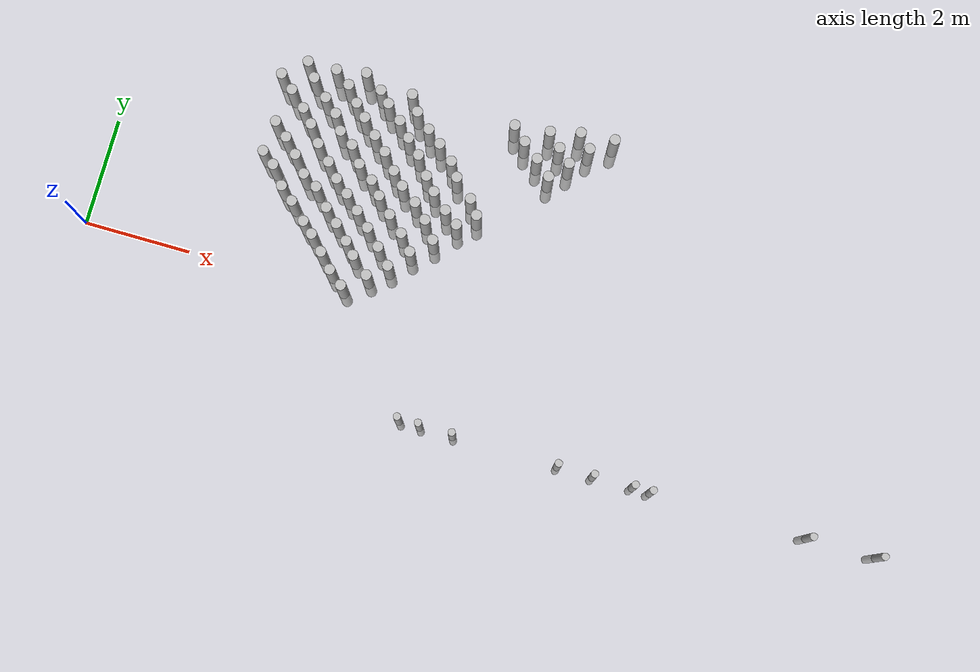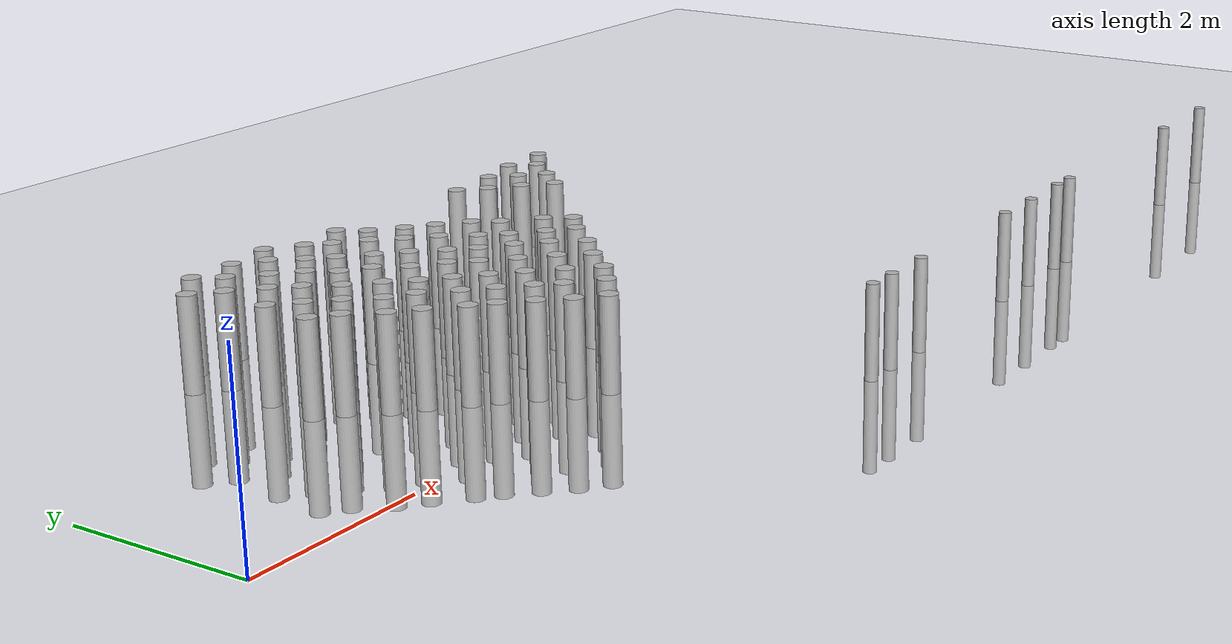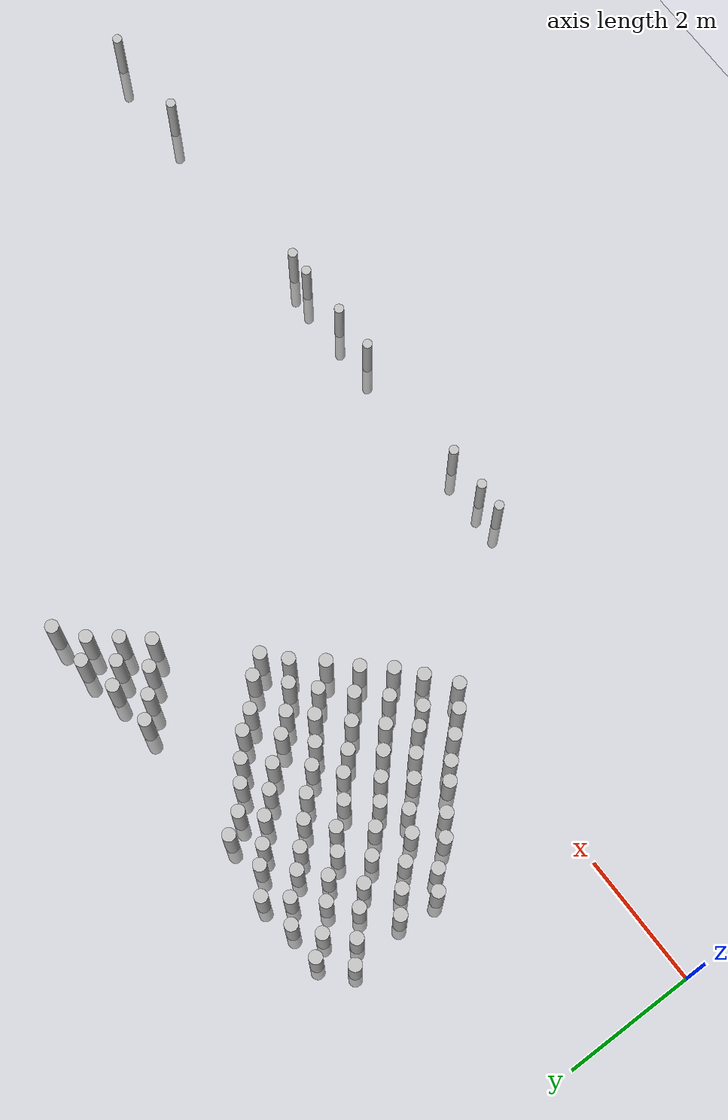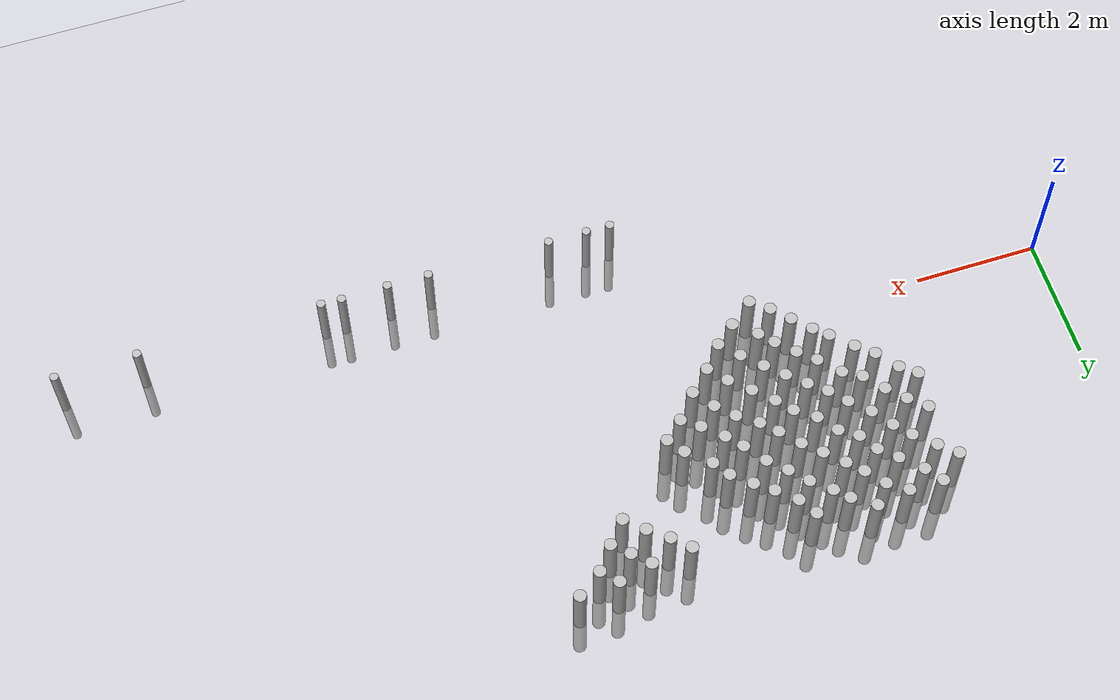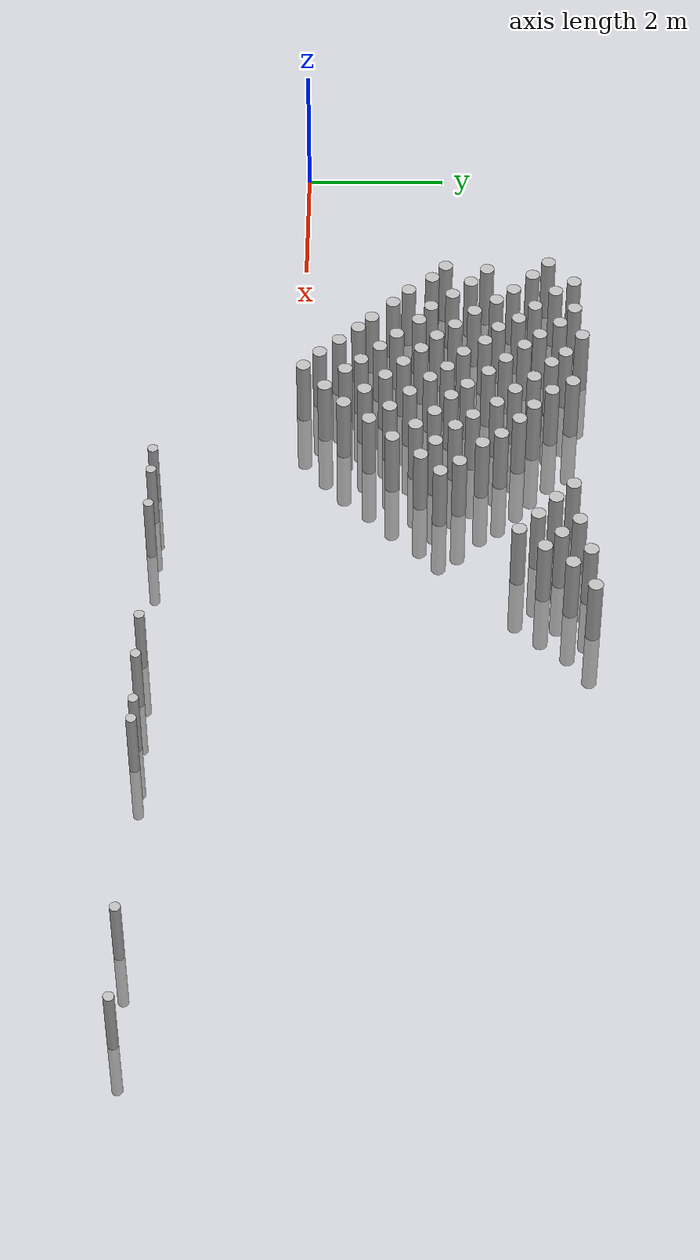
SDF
<sdf version="1.7">
 <world name="farmland_world">
  <model name="ground_plane">
   <static>1</static>
   <link name="link">
    <collision name="collision">
     <geometry><plane><normal>0 0 1</normal><size>40.0 40.0</size></plane></geometry>
     <surface><friction><ode><mu>100</mu><mu2>50</mu2></ode></friction></surface>
    </collision>
    <visual name="visual">
     <cast_shadows>0</cast_shadows>
     <geometry><plane><normal>0 0 1</normal><size>40.0 40.0</size></plane></geometry>
     <material>
      <script><uri>file://media/materials/scripts/gazebo.material</uri><name>Gazebo/Grey</name></script>
     </material>
    </visual>
   </link>
  </model>
  <model name="tree_2_0">
   <static>1</static>
   <link name="link">
    <collision name="collision">
     <geometry><cylinder><radius>0.1</radius><length>2.0</length></cylinder></geometry>
     <surface><friction><ode><mu>100</mu><mu2>50</mu2></ode></friction></surface>
    </collision>
    <visual name="visual">
     <geometry><cylinder><radius>0.1</radius><length>2.0</length></cylinder></geometry>
    </visual>
   </link>
   <pose>4.976957847610511 0.04888862747025713 0 0 0 0</pose>
  </model>
  <model name="tree_2_1">
   <static>1</static>
   <link name="link">
    <collision name="collision">
     <geometry><cylinder><radius>0.1</radius><length>2.0</length></cylinder></geometry>
     <surface><friction><ode><mu>100</mu><mu2>50</mu2></ode></friction></surface>
    </collision>
    <visual name="visual">
     <geometry><cylinder><radius>0.1</radius><length>2.0</length></cylinder></geometry>
    </visual>
   </link>
   <pose>4.706252705174817 0.2683354104112432 0 0 0 0</pose>
  </model>
  <model name="tree_2_2">
   <static>1</static>
   <link name="link">
    <collision name="collision">
     <geometry><cylinder><radius>0.1</radius><length>2.0</length></cylinder></geometry>
     <surface><friction><ode><mu>100</mu><mu2>50</mu2></ode></friction></surface>
    </collision>
    <visual name="visual">
     <geometry><cylinder><radius>0.1</radius><length>2.0</length></cylinder></geometry>
    </visual>
   </link>
   <pose>4.45766262006263 0.536296449148718 0 0 0 0</pose>
  </model>
  <model name="tree_2_3">
   <static>1</static>
   <link name="link">
    <collision name="collision">
     <geometry><cylinder><radius>0.1</radius><length>2.0</length></cylinder></geometry>
     <surface><friction><ode><mu>100</mu><mu2>50</mu2></ode></friction></surface>
    </collision>
    <visual name="visual">
     <geometry><cylinder><radius>0.1</radius><length>2.0</length></cylinder></geometry>
    </visual>
   </link>
   <pose>4.201781276606337 0.8032155601439471 0 0 0 0</pose>
  </model>
  <model name="tree_2_4">
   <static>1</static>
   <link name="link">
    <collision name="collision">
     <geometry><cylinder><radius>0.1</radius><length>2.0</length></cylinder></geometry>
     <surface><friction><ode><mu>100</mu><mu2>50</mu2></ode></friction></surface>
    </collision>
    <visual name="visual">
     <geometry><cylinder><radius>0.1</radius><length>2.0</length></cylinder></geometry>
    </visual>
   </link>
   <pose>3.992708370073716 0.9891476226442468 0 0 0 0</pose>
  </model>
  <model name="tree_2_5">
   <static>1</static>
   <link name="link">
    <collision name="collision">
     <geometry><cylinder><radius>0.1</radius><length>2.0</length></cylinder></geometry>
     <surface><friction><ode><mu>100</mu><mu2>50</mu2></ode></friction></surface>
    </collision>
    <visual name="visual">
     <geometry><cylinder><radius>0.1</radius><length>2.0</length></cylinder></geometry>
    </visual>
   </link>
   <pose>3.684042560008494 1.2877914144100004 0 0 0 0</pose>
  </model>
  <model name="tree_2_6">
   <static>1</static>
   <link name="link">
    <collision name="collision">
     <geometry><cylinder><radius>0.1</radius><length>2.0</length></cylinder></geometry>
     <surface><friction><ode><mu>100</mu><mu2>50</mu2></ode></friction></surface>
    </collision>
    <visual name="visual">
     <geometry><cylinder><radius>0.1</radius><length>2.0</length></cylinder></geometry>
    </visual>
   </link>
   <pose>3.425048770062805 1.5071883874941905 0 0 0 0</pose>
  </model>
  <model name="tree_2_7">
   <static>1</static>
   <link name="link">
    <collision name="collision">
     <geometry><cylinder><radius>0.1</radius><length>2.0</length></cylinder></geometry>
     <surface><friction><ode><mu>100</mu><mu2>50</mu2></ode></friction></surface>
    </collision>
    <visual name="visual">
     <geometry><cylinder><radius>0.1</radius><length>2.0</length></cylinder></geometry>
    </visual>
   </link>
   <pose>3.161737783501504 1.8413934828017933 0 0 0 0</pose>
  </model>
  <model name="tree_2_8">
   <static>1</static>
   <link name="link">
    <collision name="collision">
     <geometry><cylinder><radius>0.1</radius><length>2.0</length></cylinder></geometry>
     <surface><friction><ode><mu>100</mu><mu2>50</mu2></ode></friction></surface>
    </collision>
    <visual name="visual">
     <geometry><cylinder><radius>0.1</radius><length>2.0</length></cylinder></geometry>
    </visual>
   </link>
   <pose>2.917203898128225 2.033131867534686 0 0 0 0</pose>
  </model>
  <model name="tree_2_40">
   <static>1</static>
   <link name="link">
    <collision name="collision">
     <geometry><cylinder><radius>0.1</radius><length>2.0</length></cylinder></geometry>
     <surface><friction><ode><mu>100</mu><mu2>50</mu2></ode></friction></surface>
    </collision>
    <visual name="visual">
     <geometry><cylinder><radius>0.1</radius><length>2.0</length></cylinder></geometry>
    </visual>
   </link>
   <pose>6.0010371420073145 0.977404840367379 0 0 0 0</pose>
  </model>
  <model name="tree_2_41">
   <static>1</static>
   <link name="link">
    <collision name="collision">
     <geometry><cylinder><radius>0.1</radius><length>2.0</length></cylinder></geometry>
     <surface><friction><ode><mu>100</mu><mu2>50</mu2></ode></friction></surface>
    </collision>
    <visual name="visual">
     <geometry><cylinder><radius>0.1</radius><length>2.0</length></cylinder></geometry>
    </visual>
   </link>
   <pose>5.759668066585267 1.260205259457394 0 0 0 0</pose>
  </model>
  <model name="tree_2_42">
   <static>1</static>
   <link name="link">
    <collision name="collision">
     <geometry><cylinder><radius>0.1</radius><length>2.0</length></cylinder></geometry>
     <surface><friction><ode><mu>100</mu><mu2>50</mu2></ode></friction></surface>
    </collision>
    <visual name="visual">
     <geometry><cylinder><radius>0.1</radius><length>2.0</length></cylinder></geometry>
    </visual>
   </link>
   <pose>5.4624231730008415 1.5338409537364956 0 0 0 0</pose>
  </model>
  <model name="tree_2_43">
   <static>1</static>
   <link name="link">
    <collision name="collision">
     <geometry><cylinder><radius>0.1</radius><length>2.0</length></cylinder></geometry>
     <surface><friction><ode><mu>100</mu><mu2>50</mu2></ode></friction></surface>
    </collision>
    <visual name="visual">
     <geometry><cylinder><radius>0.1</radius><length>2.0</length></cylinder></geometry>
    </visual>
   </link>
   <pose>5.180801075946827 1.8142695809041989 0 0 0 0</pose>
  </model>
  <model name="tree_2_44">
   <static>1</static>
   <link name="link">
    <collision name="collision">
     <geometry><cylinder><radius>0.1</radius><length>2.0</length></cylinder></geometry>
     <surface><friction><ode><mu>100</mu><mu2>50</mu2></ode></friction></surface>
    </collision>
    <visual name="visual">
     <geometry><cylinder><radius>0.1</radius><length>2.0</length></cylinder></geometry>
    </visual>
   </link>
   <pose>4.969832545678254 2.054881575887941 0 0 0 0</pose>
  </model>
  <model name="tree_2_45">
   <static>1</static>
   <link name="link">
    <collision name="collision">
     <geometry><cylinder><radius>0.1</radius><length>2.0</length></cylinder></geometry>
     <surface><friction><ode><mu>100</mu><mu2>50</mu2></ode></friction></surface>
    </collision>
    <visual name="visual">
     <geometry><cylinder><radius>0.1</radius><length>2.0</length></cylinder></geometry>
    </visual>
   </link>
   <pose>4.668280814609631 2.280684973493861 0 0 0 0</pose>
  </model>
  <model name="tree_2_46">
   <static>1</static>
   <link name="link">
    <collision name="collision">
     <geometry><cylinder><radius>0.1</radius><length>2.0</length></cylinder></geometry>
     <surface><friction><ode><mu>100</mu><mu2>50</mu2></ode></friction></surface>
    </collision>
    <visual name="visual">
     <geometry><cylinder><radius>0.1</radius><length>2.0</length></cylinder></geometry>
    </visual>
   </link>
   <pose>4.441148075857599 2.584593504124776 0 0 0 0</pose>
  </model>
  <model name="tree_2_47">
   <static>1</static>
   <link name="link">
    <collision name="collision">
     <geometry><cylinder><radius>0.1</radius><length>2.0</length></cylinder></geometry>
     <surface><friction><ode><mu>100</mu><mu2>50</mu2></ode></friction></surface>
    </collision>
    <visual name="visual">
     <geometry><cylinder><radius>0.1</radius><length>2.0</length></cylinder></geometry>
    </visual>
   </link>
   <pose>4.167269508011154 2.774924114397641 0 0 0 0</pose>
  </model>
  <model name="tree_2_48">
   <static>1</static>
   <link name="link">
    <collision name="collision">
     <geometry><cylinder><radius>0.1</radius><length>2.0</length></cylinder></geometry>
     <surface><friction><ode><mu>100</mu><mu2>50</mu2></ode></friction></surface>
    </collision>
    <visual name="visual">
     <geometry><cylinder><radius>0.1</radius><length>2.0</length></cylinder></geometry>
    </visual>
   </link>
   <pose>3.987979063594125 3.0650073372662496 0 0 0 0</pose>
  </model>
  <model name="tree_2_49">
   <static>1</static>
   <link name="link">
    <collision name="collision">
     <geometry><cylinder><radius>0.1</radius><length>2.0</length></cylinder></geometry>
     <surface><friction><ode><mu>100</mu><mu2>50</mu2></ode></friction></surface>
    </collision>
    <visual name="visual">
     <geometry><cylinder><radius>0.1</radius><length>2.0</length></cylinder></geometry>
    </visual>
   </link>
   <pose>3.7270629796933323 3.30045049244821 0 0 0 0</pose>
  </model>
  <model name="tree_2_50">
   <static>1</static>
   <link name="link">
    <collision name="collision">
     <geometry><cylinder><radius>0.1</radius><length>2.0</length></cylinder></geometry>
     <surface><friction><ode><mu>100</mu><mu2>50</mu2></ode></friction></surface>
    </collision>
    <visual name="visual">
     <geometry><cylinder><radius>0.1</radius><length>2.0</length></cylinder></geometry>
    </visual>
   </link>
   <pose>3.422714844576982 3.5980953001499714 0 0 0 0</pose>
  </model>
  <model name="tree_2_51">
   <static>1</static>
   <link name="link">
    <collision name="collision">
     <geometry><cylinder><radius>0.1</radius><length>2.0</length></cylinder></geometry>
     <surface><friction><ode><mu>100</mu><mu2>50</mu2></ode></friction></surface>
    </collision>
    <visual name="visual">
     <geometry><cylinder><radius>0.1</radius><length>2.0</length></cylinder></geometry>
    </visual>
   </link>
   <pose>3.2252628674387864 3.862664644285818 0 0 0 0</pose>
  </model>
  <model name="tree_2_80">
   <static>1</static>
   <link name="link">
    <collision name="collision">
     <geometry><cylinder><radius>0.1</radius><length>2.0</length></cylinder></geometry>
     <surface><friction><ode><mu>100</mu><mu2>50</mu2></ode></friction></surface>
    </collision>
    <visual name="visual">
     <geometry><cylinder><radius>0.1</radius><length>2.0</length></cylinder></geometry>
    </visual>
   </link>
   <pose>6.981008193168833 1.9548397121815542 0 0 0 0</pose>
  </model>
  <model name="tree_2_81">
   <static>1</static>
   <link name="link">
    <collision name="collision">
     <geometry><cylinder><radius>0.1</radius><length>2.0</length></cylinder></geometry>
     <surface><friction><ode><mu>100</mu><mu2>50</mu2></ode></friction></surface>
    </collision>
    <visual name="visual">
     <geometry><cylinder><radius>0.1</radius><length>2.0</length></cylinder></geometry>
    </visual>
   </link>
   <pose>6.79246455439446 2.2184769236799253 0 0 0 0</pose>
  </model>
  <model name="tree_2_82">
   <static>1</static>
   <link name="link">
    <collision name="collision">
     <geometry><cylinder><radius>0.1</radius><length>2.0</length></cylinder></geometry>
     <surface><friction><ode><mu>100</mu><mu2>50</mu2></ode></friction></surface>
    </collision>
    <visual name="visual">
     <geometry><cylinder><radius>0.1</radius><length>2.0</length></cylinder></geometry>
    </visual>
   </link>
   <pose>6.443024446925515 2.531347688089246 0 0 0 0</pose>
  </model>
  <model name="tree_2_83">
   <static>1</static>
   <link name="link">
    <collision name="collision">
     <geometry><cylinder><radius>0.1</radius><length>2.0</length></cylinder></geometry>
     <surface><friction><ode><mu>100</mu><mu2>50</mu2></ode></friction></surface>
    </collision>
    <visual name="visual">
     <geometry><cylinder><radius>0.1</radius><length>2.0</length></cylinder></geometry>
    </visual>
   </link>
   <pose>6.2645026730651034 2.7909225865567393 0 0 0 0</pose>
  </model>
  <model name="tree_2_84">
   <static>1</static>
   <link name="link">
    <collision name="collision">
     <geometry><cylinder><radius>0.1</radius><length>2.0</length></cylinder></geometry>
     <surface><friction><ode><mu>100</mu><mu2>50</mu2></ode></friction></surface>
    </collision>
    <visual name="visual">
     <geometry><cylinder><radius>0.1</radius><length>2.0</length></cylinder></geometry>
    </visual>
   </link>
   <pose>5.973271860298199 3.043626457601918 0 0 0 0</pose>
  </model>
  <model name="tree_2_85">
   <static>1</static>
   <link name="link">
    <collision name="collision">
     <geometry><cylinder><radius>0.1</radius><length>2.0</length></cylinder></geometry>
     <surface><friction><ode><mu>100</mu><mu2>50</mu2></ode></friction></surface>
    </collision>
    <visual name="visual">
     <geometry><cylinder><radius>0.1</radius><length>2.0</length></cylinder></geometry>
    </visual>
   </link>
   <pose>5.705454714765799 3.248689479239055 0 0 0 0</pose>
  </model>
  <model name="tree_2_86">
   <static>1</static>
   <link name="link">
    <collision name="collision">
     <geometry><cylinder><radius>0.1</radius><length>2.0</length></cylinder></geometry>
     <surface><friction><ode><mu>100</mu><mu2>50</mu2></ode></friction></surface>
    </collision>
    <visual name="visual">
     <geometry><cylinder><radius>0.1</radius><length>2.0</length></cylinder></geometry>
    </visual>
   </link>
   <pose>5.414862065006653 3.505072572647418 0 0 0 0</pose>
  </model>
  <model name="tree_2_87">
   <static>1</static>
   <link name="link">
    <collision name="collision">
     <geometry><cylinder><radius>0.1</radius><length>2.0</length></cylinder></geometry>
     <surface><friction><ode><mu>100</mu><mu2>50</mu2></ode></friction></surface>
    </collision>
    <visual name="visual">
     <geometry><cylinder><radius>0.1</radius><length>2.0</length></cylinder></geometry>
    </visual>
   </link>
   <pose>5.235408300685697 3.7935683210757527 0 0 0 0</pose>
  </model>
  <model name="tree_2_120">
   <static>1</static>
   <link name="link">
    <collision name="collision">
     <geometry><cylinder><radius>0.1</radius><length>2.0</length></cylinder></geometry>
     <surface><friction><ode><mu>100</mu><mu2>50</mu2></ode></friction></surface>
    </collision>
    <visual name="visual">
     <geometry><cylinder><radius>0.1</radius><length>2.0</length></cylinder></geometry>
    </visual>
   </link>
   <pose>8.042603543891024 3.0045819595601126 0 0 0 0</pose>
  </model>
  <model name="tree_2_121">
   <static>1</static>
   <link name="link">
    <collision name="collision">
     <geometry><cylinder><radius>0.1</radius><length>2.0</length></cylinder></geometry>
     <surface><friction><ode><mu>100</mu><mu2>50</mu2></ode></friction></surface>
    </collision>
    <visual name="visual">
     <geometry><cylinder><radius>0.1</radius><length>2.0</length></cylinder></geometry>
    </visual>
   </link>
   <pose>7.755571899967402 3.266721064825569 0 0 0 0</pose>
  </model>
  <model name="tree_2_122">
   <static>1</static>
   <link name="link">
    <collision name="collision">
     <geometry><cylinder><radius>0.1</radius><length>2.0</length></cylinder></geometry>
     <surface><friction><ode><mu>100</mu><mu2>50</mu2></ode></friction></surface>
    </collision>
    <visual name="visual">
     <geometry><cylinder><radius>0.1</radius><length>2.0</length></cylinder></geometry>
    </visual>
   </link>
   <pose>7.451276739690299 3.511164848479967 0 0 0 0</pose>
  </model>
  <model name="tree_2_123">
   <static>1</static>
   <link name="link">
    <collision name="collision">
     <geometry><cylinder><radius>0.1</radius><length>2.0</length></cylinder></geometry>
     <surface><friction><ode><mu>100</mu><mu2>50</mu2></ode></friction></surface>
    </collision>
    <visual name="visual">
     <geometry><cylinder><radius>0.1</radius><length>2.0</length></cylinder></geometry>
    </visual>
   </link>
   <pose>7.1951181243607 3.7550683675149332 0 0 0 0</pose>
  </model>
  <model name="tree_2_160">
   <static>1</static>
   <link name="link">
    <collision name="collision">
     <geometry><cylinder><radius>0.1</radius><length>2.0</length></cylinder></geometry>
     <surface><friction><ode><mu>100</mu><mu2>50</mu2></ode></friction></surface>
    </collision>
    <visual name="visual">
     <geometry><cylinder><radius>0.1</radius><length>2.0</length></cylinder></geometry>
    </visual>
   </link>
   <pose>9.025278212752312 3.991523120894988 0 0 0 0</pose>
  </model>
  <model name="tree_2_240">
   <static>1</static>
   <link name="link">
    <collision name="collision">
     <geometry><cylinder><radius>0.1</radius><length>2.0</length></cylinder></geometry>
     <surface><friction><ode><mu>100</mu><mu2>50</mu2></ode></friction></surface>
    </collision>
    <visual name="visual">
     <geometry><cylinder><radius>0.1</radius><length>2.0</length></cylinder></geometry>
    </visual>
   </link>
   <pose>5.367338214895841 0.35314282978311407 0 0 0 0</pose>
  </model>
  <model name="tree_2_241">
   <static>1</static>
   <link name="link">
    <collision name="collision">
     <geometry><cylinder><radius>0.1</radius><length>2.0</length></cylinder></geometry>
     <surface><friction><ode><mu>100</mu><mu2>50</mu2></ode></friction></surface>
    </collision>
    <visual name="visual">
     <geometry><cylinder><radius>0.1</radius><length>2.0</length></cylinder></geometry>
    </visual>
   </link>
   <pose>5.0362766076079035 0.6330379190573571 0 0 0 0</pose>
  </model>
  <model name="tree_2_242">
   <static>1</static>
   <link name="link">
    <collision name="collision">
     <geometry><cylinder><radius>0.1</radius><length>2.0</length></cylinder></geometry>
     <surface><friction><ode><mu>100</mu><mu2>50</mu2></ode></friction></surface>
    </collision>
    <visual name="visual">
     <geometry><cylinder><radius>0.1</radius><length>2.0</length></cylinder></geometry>
    </visual>
   </link>
   <pose>4.843643334480206 0.850210613098685 0 0 0 0</pose>
  </model>
  <model name="tree_2_243">
   <static>1</static>
   <link name="link">
    <collision name="collision">
     <geometry><cylinder><radius>0.1</radius><length>2.0</length></cylinder></geometry>
     <surface><friction><ode><mu>100</mu><mu2>50</mu2></ode></friction></surface>
    </collision>
    <visual name="visual">
     <geometry><cylinder><radius>0.1</radius><length>2.0</length></cylinder></geometry>
    </visual>
   </link>
   <pose>4.578727545219148 1.1115196856023477 0 0 0 0</pose>
  </model>
  <model name="tree_2_244">
   <static>1</static>
   <link name="link">
    <collision name="collision">
     <geometry><cylinder><radius>0.1</radius><length>2.0</length></cylinder></geometry>
     <surface><friction><ode><mu>100</mu><mu2>50</mu2></ode></friction></surface>
    </collision>
    <visual name="visual">
     <geometry><cylinder><radius>0.1</radius><length>2.0</length></cylinder></geometry>
    </visual>
   </link>
   <pose>4.321195215670547 1.3454823482344576 0 0 0 0</pose>
  </model>
  <model name="tree_2_245">
   <static>1</static>
   <link name="link">
    <collision name="collision">
     <geometry><cylinder><radius>0.1</radius><length>2.0</length></cylinder></geometry>
     <surface><friction><ode><mu>100</mu><mu2>50</mu2></ode></friction></surface>
    </collision>
    <visual name="visual">
     <geometry><cylinder><radius>0.1</radius><length>2.0</length></cylinder></geometry>
    </visual>
   </link>
   <pose>4.032100634037781 1.6587347103401542 0 0 0 0</pose>
  </model>
  <model name="tree_2_246">
   <static>1</static>
   <link name="link">
    <collision name="collision">
     <geometry><cylinder><radius>0.1</radius><length>2.0</length></cylinder></geometry>
     <surface><friction><ode><mu>100</mu><mu2>50</mu2></ode></friction></surface>
    </collision>
    <visual name="visual">
     <geometry><cylinder><radius>0.1</radius><length>2.0</length></cylinder></geometry>
    </visual>
   </link>
   <pose>3.7517705935666434 1.8280204498524988 0 0 0 0</pose>
  </model>
  <model name="tree_2_247">
   <static>1</static>
   <link name="link">
    <collision name="collision">
     <geometry><cylinder><radius>0.1</radius><length>2.0</length></cylinder></geometry>
     <surface><friction><ode><mu>100</mu><mu2>50</mu2></ode></friction></surface>
    </collision>
    <visual name="visual">
     <geometry><cylinder><radius>0.1</radius><length>2.0</length></cylinder></geometry>
    </visual>
   </link>
   <pose>3.4999158954587792 2.1312260990390466 0 0 0 0</pose>
  </model>
  <model name="tree_2_248">
   <static>1</static>
   <link name="link">
    <collision name="collision">
     <geometry><cylinder><radius>0.1</radius><length>2.0</length></cylinder></geometry>
     <surface><friction><ode><mu>100</mu><mu2>50</mu2></ode></friction></surface>
    </collision>
    <visual name="visual">
     <geometry><cylinder><radius>0.1</radius><length>2.0</length></cylinder></geometry>
    </visual>
   </link>
   <pose>3.2443464452610624 2.394700390191073 0 0 0 0</pose>
  </model>
  <model name="tree_2_249">
   <static>1</static>
   <link name="link">
    <collision name="collision">
     <geometry><cylinder><radius>0.1</radius><length>2.0</length></cylinder></geometry>
     <surface><friction><ode><mu>100</mu><mu2>50</mu2></ode></friction></surface>
    </collision>
    <visual name="visual">
     <geometry><cylinder><radius>0.1</radius><length>2.0</length></cylinder></geometry>
    </visual>
   </link>
   <pose>2.9779838986433536 2.625640966618325 0 0 0 0</pose>
  </model>
  <model name="tree_2_280">
   <static>1</static>
   <link name="link">
    <collision name="collision">
     <geometry><cylinder><radius>0.1</radius><length>2.0</length></cylinder></geometry>
     <surface><friction><ode><mu>100</mu><mu2>50</mu2></ode></friction></surface>
    </collision>
    <visual name="visual">
     <geometry><cylinder><radius>0.1</radius><length>2.0</length></cylinder></geometry>
    </visual>
   </link>
   <pose>5.691227592226115 0.6230135812925114 0 0 0 0</pose>
  </model>
  <model name="tree_2_281">
   <static>1</static>
   <link name="link">
    <collision name="collision">
     <geometry><cylinder><radius>0.1</radius><length>2.0</length></cylinder></geometry>
     <surface><friction><ode><mu>100</mu><mu2>50</mu2></ode></friction></surface>
    </collision>
    <visual name="visual">
     <geometry><cylinder><radius>0.1</radius><length>2.0</length></cylinder></geometry>
    </visual>
   </link>
   <pose>5.426146736078497 0.9076431892787518 0 0 0 0</pose>
  </model>
  <model name="tree_2_282">
   <static>1</static>
   <link name="link">
    <collision name="collision">
     <geometry><cylinder><radius>0.1</radius><length>2.0</length></cylinder></geometry>
     <surface><friction><ode><mu>100</mu><mu2>50</mu2></ode></friction></surface>
    </collision>
    <visual name="visual">
     <geometry><cylinder><radius>0.1</radius><length>2.0</length></cylinder></geometry>
    </visual>
   </link>
   <pose>5.1446276067553525 1.19199477218192 0 0 0 0</pose>
  </model>
  <model name="tree_2_283">
   <static>1</static>
   <link name="link">
    <collision name="collision">
     <geometry><cylinder><radius>0.1</radius><length>2.0</length></cylinder></geometry>
     <surface><friction><ode><mu>100</mu><mu2>50</mu2></ode></friction></surface>
    </collision>
    <visual name="visual">
     <geometry><cylinder><radius>0.1</radius><length>2.0</length></cylinder></geometry>
    </visual>
   </link>
   <pose>4.876733584895892 1.4416135953677043 0 0 0 0</pose>
  </model>
  <model name="tree_2_284">
   <static>1</static>
   <link name="link">
    <collision name="collision">
     <geometry><cylinder><radius>0.1</radius><length>2.0</length></cylinder></geometry>
     <surface><friction><ode><mu>100</mu><mu2>50</mu2></ode></friction></surface>
    </collision>
    <visual name="visual">
     <geometry><cylinder><radius>0.1</radius><length>2.0</length></cylinder></geometry>
    </visual>
   </link>
   <pose>4.6106415581796405 1.6884684564396952 0 0 0 0</pose>
  </model>
  <model name="tree_2_285">
   <static>1</static>
   <link name="link">
    <collision name="collision">
     <geometry><cylinder><radius>0.1</radius><length>2.0</length></cylinder></geometry>
     <surface><friction><ode><mu>100</mu><mu2>50</mu2></ode></friction></surface>
    </collision>
    <visual name="visual">
     <geometry><cylinder><radius>0.1</radius><length>2.0</length></cylinder></geometry>
    </visual>
   </link>
   <pose>4.351264524582648 1.9062797715256483 0 0 0 0</pose>
  </model>
  <model name="tree_2_286">
   <static>1</static>
   <link name="link">
    <collision name="collision">
     <geometry><cylinder><radius>0.1</radius><length>2.0</length></cylinder></geometry>
     <surface><friction><ode><mu>100</mu><mu2>50</mu2></ode></friction></surface>
    </collision>
    <visual name="visual">
     <geometry><cylinder><radius>0.1</radius><length>2.0</length></cylinder></geometry>
    </visual>
   </link>
   <pose>4.120650008757715 2.1651808575136795 0 0 0 0</pose>
  </model>
  <model name="tree_2_287">
   <static>1</static>
   <link name="link">
    <collision name="collision">
     <geometry><cylinder><radius>0.1</radius><length>2.0</length></cylinder></geometry>
     <surface><friction><ode><mu>100</mu><mu2>50</mu2></ode></friction></surface>
    </collision>
    <visual name="visual">
     <geometry><cylinder><radius>0.1</radius><length>2.0</length></cylinder></geometry>
    </visual>
   </link>
   <pose>3.841000941679936 2.4400202391214223 0 0 0 0</pose>
  </model>
  <model name="tree_2_288">
   <static>1</static>
   <link name="link">
    <collision name="collision">
     <geometry><cylinder><radius>0.1</radius><length>2.0</length></cylinder></geometry>
     <surface><friction><ode><mu>100</mu><mu2>50</mu2></ode></friction></surface>
    </collision>
    <visual name="visual">
     <geometry><cylinder><radius>0.1</radius><length>2.0</length></cylinder></geometry>
    </visual>
   </link>
   <pose>3.611004645325913 2.753388063750779 0 0 0 0</pose>
  </model>
  <model name="tree_2_289">
   <static>1</static>
   <link name="link">
    <collision name="collision">
     <geometry><cylinder><radius>0.1</radius><length>2.0</length></cylinder></geometry>
     <surface><friction><ode><mu>100</mu><mu2>50</mu2></ode></friction></surface>
    </collision>
    <visual name="visual">
     <geometry><cylinder><radius>0.1</radius><length>2.0</length></cylinder></geometry>
    </visual>
   </link>
   <pose>3.3924424965572784 2.999596456813495 0 0 0 0</pose>
  </model>
  <model name="tree_2_290">
   <static>1</static>
   <link name="link">
    <collision name="collision">
     <geometry><cylinder><radius>0.1</radius><length>2.0</length></cylinder></geometry>
     <surface><friction><ode><mu>100</mu><mu2>50</mu2></ode></friction></surface>
    </collision>
    <visual name="visual">
     <geometry><cylinder><radius>0.1</radius><length>2.0</length></cylinder></geometry>
    </visual>
   </link>
   <pose>3.0906795220554177 3.275160626412783 0 0 0 0</pose>
  </model>
  <model name="tree_2_291">
   <static>1</static>
   <link name="link">
    <collision name="collision">
     <geometry><cylinder><radius>0.1</radius><length>2.0</length></cylinder></geometry>
     <surface><friction><ode><mu>100</mu><mu2>50</mu2></ode></friction></surface>
    </collision>
    <visual name="visual">
     <geometry><cylinder><radius>0.1</radius><length>2.0</length></cylinder></geometry>
    </visual>
   </link>
   <pose>2.8248094526706815 3.5082438733390706 0 0 0 0</pose>
  </model>
  <model name="tree_2_320">
   <static>1</static>
   <link name="link">
    <collision name="collision">
     <geometry><cylinder><radius>0.1</radius><length>2.0</length></cylinder></geometry>
     <surface><friction><ode><mu>100</mu><mu2>50</mu2></ode></friction></surface>
    </collision>
    <visual name="visual">
     <geometry><cylinder><radius>0.1</radius><length>2.0</length></cylinder></geometry>
    </visual>
   </link>
   <pose>6.342244346120517 1.300651003431943 0 0 0 0</pose>
  </model>
  <model name="tree_2_321">
   <static>1</static>
   <link name="link">
    <collision name="collision">
     <geometry><cylinder><radius>0.1</radius><length>2.0</length></cylinder></geometry>
     <surface><friction><ode><mu>100</mu><mu2>50</mu2></ode></friction></surface>
    </collision>
    <visual name="visual">
     <geometry><cylinder><radius>0.1</radius><length>2.0</length></cylinder></geometry>
    </visual>
   </link>
   <pose>6.104549829214059 1.6175160248595444 0 0 0 0</pose>
  </model>
  <model name="tree_2_322">
   <static>1</static>
   <link name="link">
    <collision name="collision">
     <geometry><cylinder><radius>0.1</radius><length>2.0</length></cylinder></geometry>
     <surface><friction><ode><mu>100</mu><mu2>50</mu2></ode></friction></surface>
    </collision>
    <visual name="visual">
     <geometry><cylinder><radius>0.1</radius><length>2.0</length></cylinder></geometry>
    </visual>
   </link>
   <pose>5.84376055962443 1.8767031042539275 0 0 0 0</pose>
  </model>
  <model name="tree_2_323">
   <static>1</static>
   <link name="link">
    <collision name="collision">
     <geometry><cylinder><radius>0.1</radius><length>2.0</length></cylinder></geometry>
     <surface><friction><ode><mu>100</mu><mu2>50</mu2></ode></friction></surface>
    </collision>
    <visual name="visual">
     <geometry><cylinder><radius>0.1</radius><length>2.0</length></cylinder></geometry>
    </visual>
   </link>
   <pose>5.536203207848737 2.10479751566718 0 0 0 0</pose>
  </model>
  <model name="tree_2_324">
   <static>1</static>
   <link name="link">
    <collision name="collision">
     <geometry><cylinder><radius>0.1</radius><length>2.0</length></cylinder></geometry>
     <surface><friction><ode><mu>100</mu><mu2>50</mu2></ode></friction></surface>
    </collision>
    <visual name="visual">
     <geometry><cylinder><radius>0.1</radius><length>2.0</length></cylinder></geometry>
    </visual>
   </link>
   <pose>5.310281185749333 2.3321306083543942 0 0 0 0</pose>
  </model>
  <model name="tree_2_325">
   <static>1</static>
   <link name="link">
    <collision name="collision">
     <geometry><cylinder><radius>0.1</radius><length>2.0</length></cylinder></geometry>
     <surface><friction><ode><mu>100</mu><mu2>50</mu2></ode></friction></surface>
    </collision>
    <visual name="visual">
     <geometry><cylinder><radius>0.1</radius><length>2.0</length></cylinder></geometry>
    </visual>
   </link>
   <pose>5.052917709842374 2.6257838121887995 0 0 0 0</pose>
  </model>
  <model name="tree_2_326">
   <static>1</static>
   <link name="link">
    <collision name="collision">
     <geometry><cylinder><radius>0.1</radius><length>2.0</length></cylinder></geometry>
     <surface><friction><ode><mu>100</mu><mu2>50</mu2></ode></friction></surface>
    </collision>
    <visual name="visual">
     <geometry><cylinder><radius>0.1</radius><length>2.0</length></cylinder></geometry>
    </visual>
   </link>
   <pose>4.791457200791862 2.8700082688558686 0 0 0 0</pose>
  </model>
  <model name="tree_2_327">
   <static>1</static>
   <link name="link">
    <collision name="collision">
     <geometry><cylinder><radius>0.1</radius><length>2.0</length></cylinder></geometry>
     <surface><friction><ode><mu>100</mu><mu2>50</mu2></ode></friction></surface>
    </collision>
    <visual name="visual">
     <geometry><cylinder><radius>0.1</radius><length>2.0</length></cylinder></geometry>
    </visual>
   </link>
   <pose>4.521813581722415 3.136496958441839 0 0 0 0</pose>
  </model>
  <model name="tree_2_328">
   <static>1</static>
   <link name="link">
    <collision name="collision">
     <geometry><cylinder><radius>0.1</radius><length>2.0</length></cylinder></geometry>
     <surface><friction><ode><mu>100</mu><mu2>50</mu2></ode></friction></surface>
    </collision>
    <visual name="visual">
     <geometry><cylinder><radius>0.1</radius><length>2.0</length></cylinder></geometry>
    </visual>
   </link>
   <pose>4.303934047635899 3.3564097450371406 0 0 0 0</pose>
  </model>
  <model name="tree_2_329">
   <static>1</static>
   <link name="link">
    <collision name="collision">
     <geometry><cylinder><radius>0.1</radius><length>2.0</length></cylinder></geometry>
     <surface><friction><ode><mu>100</mu><mu2>50</mu2></ode></friction></surface>
    </collision>
    <visual name="visual">
     <geometry><cylinder><radius>0.1</radius><length>2.0</length></cylinder></geometry>
    </visual>
   </link>
   <pose>4.066816473609134 3.6471249152297327 0 0 0 0</pose>
  </model>
  <model name="tree_2_330">
   <static>1</static>
   <link name="link">
    <collision name="collision">
     <geometry><cylinder><radius>0.1</radius><length>2.0</length></cylinder></geometry>
     <surface><friction><ode><mu>100</mu><mu2>50</mu2></ode></friction></surface>
    </collision>
    <visual name="visual">
     <geometry><cylinder><radius>0.1</radius><length>2.0</length></cylinder></geometry>
    </visual>
   </link>
   <pose>3.769432952960459 3.8575614288253335 0 0 0 0</pose>
  </model>
  <model name="tree_2_360">
   <static>1</static>
   <link name="link">
    <collision name="collision">
     <geometry><cylinder><radius>0.1</radius><length>2.0</length></cylinder></geometry>
     <surface><friction><ode><mu>100</mu><mu2>50</mu2></ode></friction></surface>
    </collision>
    <visual name="visual">
     <geometry><cylinder><radius>0.1</radius><length>2.0</length></cylinder></geometry>
    </visual>
   </link>
   <pose>6.676639426620687 1.689458375534782 0 0 0 0</pose>
  </model>
  <model name="tree_2_361">
   <static>1</static>
   <link name="link">
    <collision name="collision">
     <geometry><cylinder><radius>0.1</radius><length>2.0</length></cylinder></geometry>
     <surface><friction><ode><mu>100</mu><mu2>50</mu2></ode></friction></surface>
    </collision>
    <visual name="visual">
     <geometry><cylinder><radius>0.1</radius><length>2.0</length></cylinder></geometry>
    </visual>
   </link>
   <pose>6.4117410658012695 1.8909860870417834 0 0 0 0</pose>
  </model>
  <model name="tree_2_362">
   <static>1</static>
   <link name="link">
    <collision name="collision">
     <geometry><cylinder><radius>0.1</radius><length>2.0</length></cylinder></geometry>
     <surface><friction><ode><mu>100</mu><mu2>50</mu2></ode></friction></surface>
    </collision>
    <visual name="visual">
     <geometry><cylinder><radius>0.1</radius><length>2.0</length></cylinder></geometry>
    </visual>
   </link>
   <pose>6.117065655519479 2.161720694899487 0 0 0 0</pose>
  </model>
  <model name="tree_2_363">
   <static>1</static>
   <link name="link">
    <collision name="collision">
     <geometry><cylinder><radius>0.1</radius><length>2.0</length></cylinder></geometry>
     <surface><friction><ode><mu>100</mu><mu2>50</mu2></ode></friction></surface>
    </collision>
    <visual name="visual">
     <geometry><cylinder><radius>0.1</radius><length>2.0</length></cylinder></geometry>
    </visual>
   </link>
   <pose>5.904058391546656 2.404207016664008 0 0 0 0</pose>
  </model>
  <model name="tree_2_364">
   <static>1</static>
   <link name="link">
    <collision name="collision">
     <geometry><cylinder><radius>0.1</radius><length>2.0</length></cylinder></geometry>
     <surface><friction><ode><mu>100</mu><mu2>50</mu2></ode></friction></surface>
    </collision>
    <visual name="visual">
     <geometry><cylinder><radius>0.1</radius><length>2.0</length></cylinder></geometry>
    </visual>
   </link>
   <pose>5.658852172155477 2.736774761728095 0 0 0 0</pose>
  </model>
  <model name="tree_2_365">
   <static>1</static>
   <link name="link">
    <collision name="collision">
     <geometry><cylinder><radius>0.1</radius><length>2.0</length></cylinder></geometry>
     <surface><friction><ode><mu>100</mu><mu2>50</mu2></ode></friction></surface>
    </collision>
    <visual name="visual">
     <geometry><cylinder><radius>0.1</radius><length>2.0</length></cylinder></geometry>
    </visual>
   </link>
   <pose>5.397272689053942 2.990930292529275 0 0 0 0</pose>
  </model>
  <model name="tree_2_366">
   <static>1</static>
   <link name="link">
    <collision name="collision">
     <geometry><cylinder><radius>0.1</radius><length>2.0</length></cylinder></geometry>
     <surface><friction><ode><mu>100</mu><mu2>50</mu2></ode></friction></surface>
    </collision>
    <visual name="visual">
     <geometry><cylinder><radius>0.1</radius><length>2.0</length></cylinder></geometry>
    </visual>
   </link>
   <pose>5.1525433808977 3.2584055393377804 0 0 0 0</pose>
  </model>
  <model name="tree_2_367">
   <static>1</static>
   <link name="link">
    <collision name="collision">
     <geometry><cylinder><radius>0.1</radius><length>2.0</length></cylinder></geometry>
     <surface><friction><ode><mu>100</mu><mu2>50</mu2></ode></friction></surface>
    </collision>
    <visual name="visual">
     <geometry><cylinder><radius>0.1</radius><length>2.0</length></cylinder></geometry>
    </visual>
   </link>
   <pose>4.863849337233464 3.5079900462866385 0 0 0 0</pose>
  </model>
  <model name="tree_2_368">
   <static>1</static>
   <link name="link">
    <collision name="collision">
     <geometry><cylinder><radius>0.1</radius><length>2.0</length></cylinder></geometry>
     <surface><friction><ode><mu>100</mu><mu2>50</mu2></ode></friction></surface>
    </collision>
    <visual name="visual">
     <geometry><cylinder><radius>0.1</radius><length>2.0</length></cylinder></geometry>
    </visual>
   </link>
   <pose>4.661347765914045 3.7095551999365797 0 0 0 0</pose>
  </model>
  <model name="tree_2_369">
   <static>1</static>
   <link name="link">
    <collision name="collision">
     <geometry><cylinder><radius>0.1</radius><length>2.0</length></cylinder></geometry>
     <surface><friction><ode><mu>100</mu><mu2>50</mu2></ode></friction></surface>
    </collision>
    <visual name="visual">
     <geometry><cylinder><radius>0.1</radius><length>2.0</length></cylinder></geometry>
    </visual>
   </link>
   <pose>4.3158433648449765 3.949170971304256 0 0 0 0</pose>
  </model>
  <model name="tree_2_400">
   <static>1</static>
   <link name="link">
    <collision name="collision">
     <geometry><cylinder><radius>0.1</radius><length>2.0</length></cylinder></geometry>
     <surface><friction><ode><mu>100</mu><mu2>50</mu2></ode></friction></surface>
    </collision>
    <visual name="visual">
     <geometry><cylinder><radius>0.1</radius><length>2.0</length></cylinder></geometry>
    </visual>
   </link>
   <pose>8.34030227472442 3.3435219010629464 0 0 0 0</pose>
  </model>
  <model name="tree_2_401">
   <static>1</static>
   <link name="link">
    <collision name="collision">
     <geometry><cylinder><radius>0.1</radius><length>2.0</length></cylinder></geometry>
     <surface><friction><ode><mu>100</mu><mu2>50</mu2></ode></friction></surface>
    </collision>
    <visual name="visual">
     <geometry><cylinder><radius>0.1</radius><length>2.0</length></cylinder></geometry>
    </visual>
   </link>
   <pose>8.09536088663985 3.5739288482906555 0 0 0 0</pose>
  </model>
  <model name="tree_2_402">
   <static>1</static>
   <link name="link">
    <collision name="collision">
     <geometry><cylinder><radius>0.1</radius><length>2.0</length></cylinder></geometry>
     <surface><friction><ode><mu>100</mu><mu2>50</mu2></ode></friction></surface>
    </collision>
    <visual name="visual">
     <geometry><cylinder><radius>0.1</radius><length>2.0</length></cylinder></geometry>
    </visual>
   </link>
   <pose>7.847573735329693 3.8186520688995085 0 0 0 0</pose>
  </model>
  <model name="tree_2_440">
   <static>1</static>
   <link name="link">
    <collision name="collision">
     <geometry><cylinder><radius>0.1</radius><length>2.0</length></cylinder></geometry>
     <surface><friction><ode><mu>100</mu><mu2>50</mu2></ode></friction></surface>
    </collision>
    <visual name="visual">
     <geometry><cylinder><radius>0.1</radius><length>2.0</length></cylinder></geometry>
    </visual>
   </link>
   <pose>8.625360658839243 3.70609758279382 0 0 0 0</pose>
  </model>
  <model name="tree_2_441">
   <static>1</static>
   <link name="link">
    <collision name="collision">
     <geometry><cylinder><radius>0.1</radius><length>2.0</length></cylinder></geometry>
     <surface><friction><ode><mu>100</mu><mu2>50</mu2></ode></friction></surface>
    </collision>
    <visual name="visual">
     <geometry><cylinder><radius>0.1</radius><length>2.0</length></cylinder></geometry>
    </visual>
   </link>
   <pose>8.394053047813353 3.9524167747413985 0 0 0 0</pose>
  </model>
  <model name="tree_3_200">
   <static>1</static>
   <link name="link">
    <collision name="collision">
     <geometry><cylinder><radius>0.07</radius><length>2.0</length></cylinder></geometry>
     <surface><friction><ode><mu>100</mu><mu2>50</mu2></ode></friction></surface>
    </collision>
    <visual name="visual">
     <geometry><cylinder><radius>0.07</radius><length>2.0</length></cylinder></geometry>
    </visual>
   </link>
   <pose>6.622441655493051 -1.9537843015829746 0 0 0 0</pose>
  </model>
  <model name="tree_3_240">
   <static>1</static>
   <link name="link">
    <collision name="collision">
     <geometry><cylinder><radius>0.07</radius><length>2.0</length></cylinder></geometry>
     <surface><friction><ode><mu>100</mu><mu2>50</mu2></ode></friction></surface>
    </collision>
    <visual name="visual">
     <geometry><cylinder><radius>0.07</radius><length>2.0</length></cylinder></geometry>
    </visual>
   </link>
   <pose>7.013915485176565 -1.9564120683562423 0 0 0 0</pose>
  </model>
  <model name="tree_3_320">
   <static>1</static>
   <link name="link">
    <collision name="collision">
     <geometry><cylinder><radius>0.07</radius><length>2.0</length></cylinder></geometry>
     <surface><friction><ode><mu>100</mu><mu2>50</mu2></ode></friction></surface>
    </collision>
    <visual name="visual">
     <geometry><cylinder><radius>0.07</radius><length>2.0</length></cylinder></geometry>
    </visual>
   </link>
   <pose>7.641880834579354 -1.9558006586646375 0 0 0 0</pose>
  </model>
  <model name="tree_3_420">
   <static>1</static>
   <link name="link">
    <collision name="collision">
     <geometry><cylinder><radius>0.07</radius><length>2.0</length></cylinder></geometry>
     <surface><friction><ode><mu>100</mu><mu2>50</mu2></ode></friction></surface>
    </collision>
    <visual name="visual">
     <geometry><cylinder><radius>0.07</radius><length>2.0</length></cylinder></geometry>
    </visual>
   </link>
   <pose>9.62820599722708 -1.959611125348936 0 0 0 0</pose>
  </model>
  <model name="tree_3_480">
   <static>1</static>
   <link name="link">
    <collision name="collision">
     <geometry><cylinder><radius>0.07</radius><length>2.0</length></cylinder></geometry>
     <surface><friction><ode><mu>100</mu><mu2>50</mu2></ode></friction></surface>
    </collision>
    <visual name="visual">
     <geometry><cylinder><radius>0.07</radius><length>2.0</length></cylinder></geometry>
    </visual>
   </link>
   <pose>10.29729802454092 -1.9652078749365547 0 0 0 0</pose>
  </model>
  <model name="tree_3_540">
   <static>1</static>
   <link name="link">
    <collision name="collision">
     <geometry><cylinder><radius>0.07</radius><length>2.0</length></cylinder></geometry>
     <surface><friction><ode><mu>100</mu><mu2>50</mu2></ode></friction></surface>
    </collision>
    <visual name="visual">
     <geometry><cylinder><radius>0.07</radius><length>2.0</length></cylinder></geometry>
    </visual>
   </link>
   <pose>11.046806452209902 -1.950112647728659 0 0 0 0</pose>
  </model>
  <model name="tree_3_570">
   <static>1</static>
   <link name="link">
    <collision name="collision">
     <geometry><cylinder><radius>0.07</radius><length>2.0</length></cylinder></geometry>
     <surface><friction><ode><mu>100</mu><mu2>50</mu2></ode></friction></surface>
    </collision>
    <visual name="visual">
     <geometry><cylinder><radius>0.07</radius><length>2.0</length></cylinder></geometry>
    </visual>
   </link>
   <pose>11.378290720489408 -1.9591593845183874 0 0 0 0</pose>
  </model>
  <model name="tree_3_750">
   <static>1</static>
   <link name="link">
    <collision name="collision">
     <geometry><cylinder><radius>0.07</radius><length>2.0</length></cylinder></geometry>
     <surface><friction><ode><mu>100</mu><mu2>50</mu2></ode></friction></surface>
    </collision>
    <visual name="visual">
     <geometry><cylinder><radius>0.07</radius><length>2.0</length></cylinder></geometry>
    </visual>
   </link>
   <pose>14.324180234752358 -1.9687597805629269 0 0 0 0</pose>
  </model>
  <model name="tree_3_870">
   <static>1</static>
   <link name="link">
    <collision name="collision">
     <geometry><cylinder><radius>0.07</radius><length>2.0</length></cylinder></geometry>
     <surface><friction><ode><mu>100</mu><mu2>50</mu2></ode></friction></surface>
    </collision>
    <visual name="visual">
     <geometry><cylinder><radius>0.07</radius><length>2.0</length></cylinder></geometry>
    </visual>
   </link>
   <pose>15.630662042364886 -1.960006412321893 0 0 0 0</pose>
  </model>
 </world>
</sdf>
